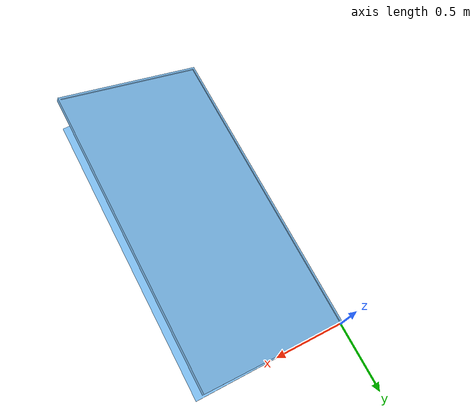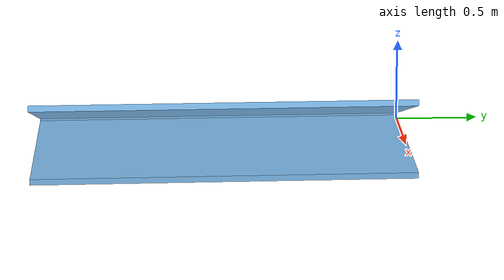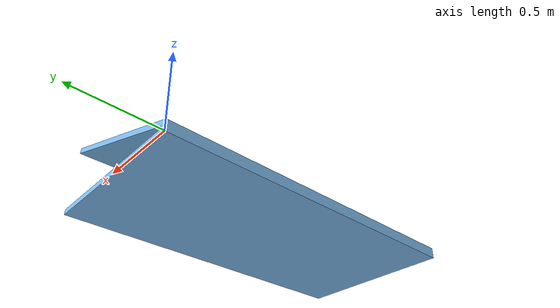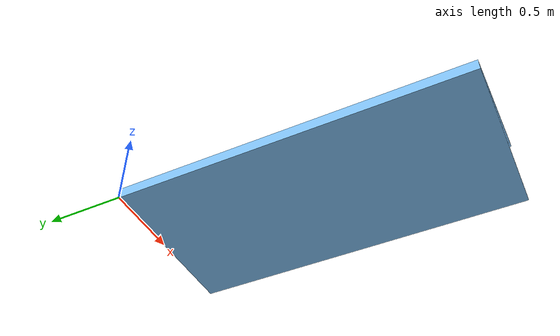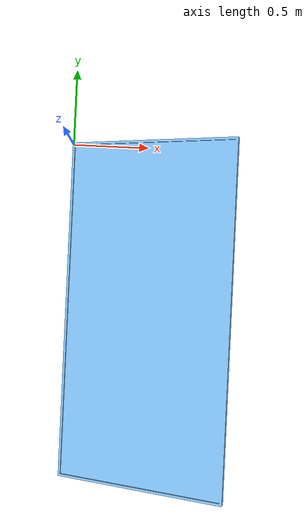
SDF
<?xml version="1.0" ?>
<sdf version="1.6">
  <model name="photovoltaic">
    <static>true</static>
    <link name="link">
      <collision name="collision">
        <pose>0 0 0 1.570796327 0 0</pose>
        <geometry>
          <mesh>
            <scale>1 1 1</scale>
            <uri>model://photovoltaic/meshes/photovoltaic.stl</uri>
          </mesh>
        </geometry>
      </collision>
      <visual name="visual">
        <pose>0 0 0 1.570796327 0 0</pose>
        <geometry>
          <mesh>
            <scale>1 1 1</scale>
            <uri>model://photovoltaic/meshes/photovoltaic.stl</uri>
          </mesh>
        </geometry>
        <material>
          <script>
            <uri>file://media/materials/scripts/gazebo.material</uri>
            <name>Gazebo/SkyBlue</name>
          </script>
          <ambient>1 1 1 1</ambient>
        </material>
      </visual>
    </link>
  </model>
</sdf>
